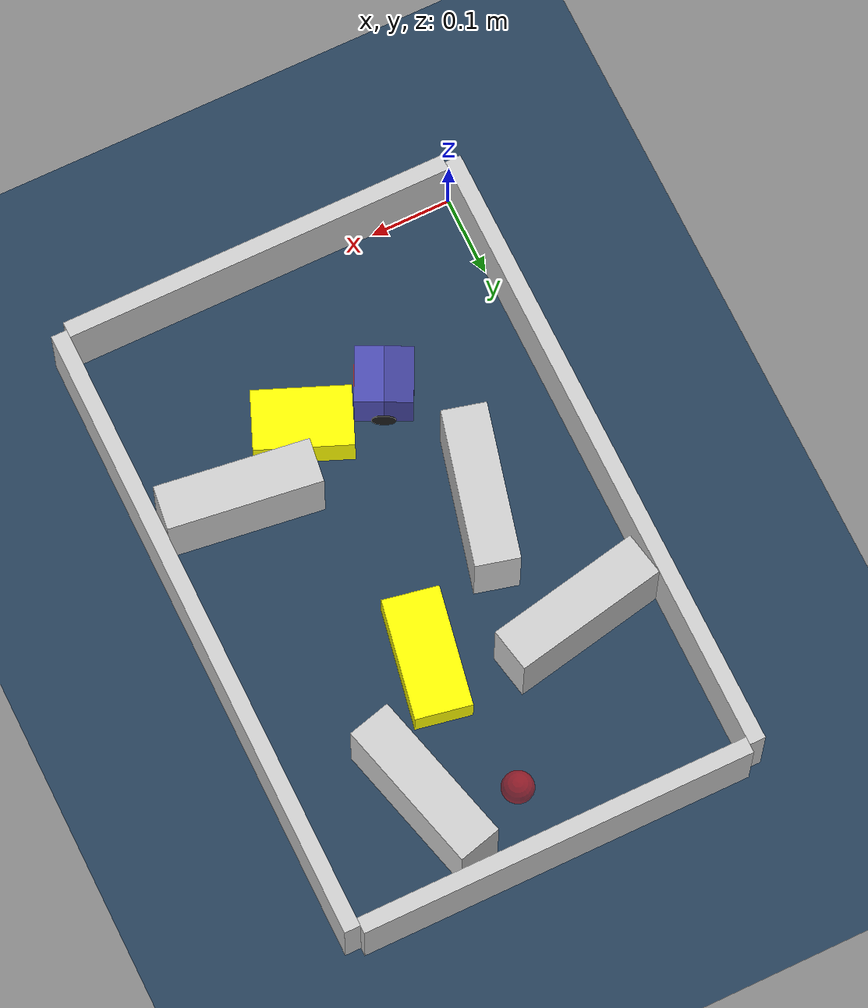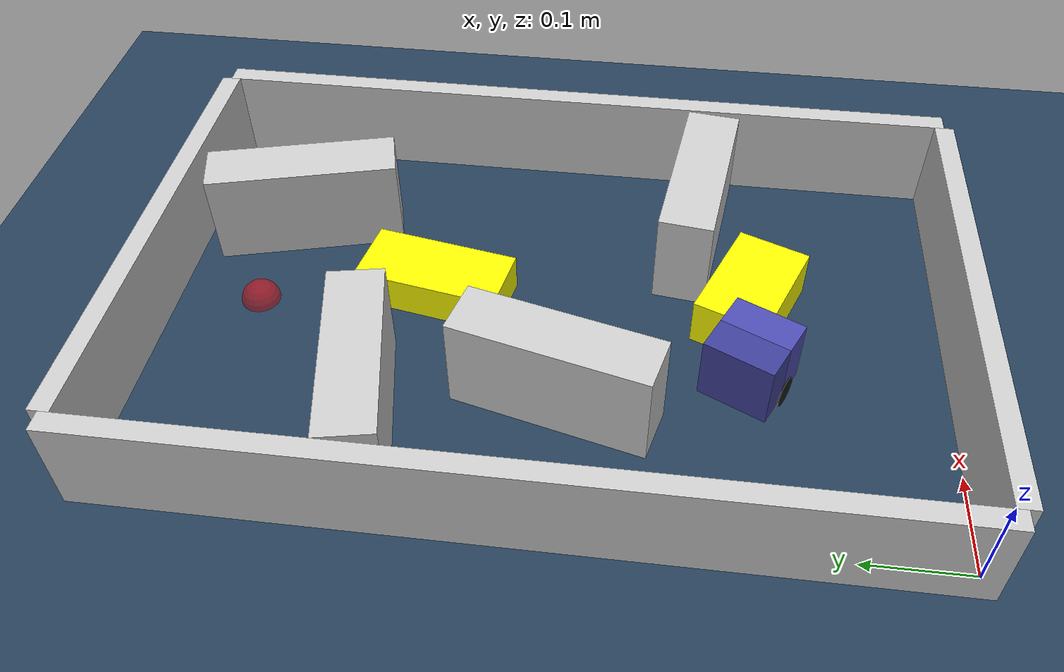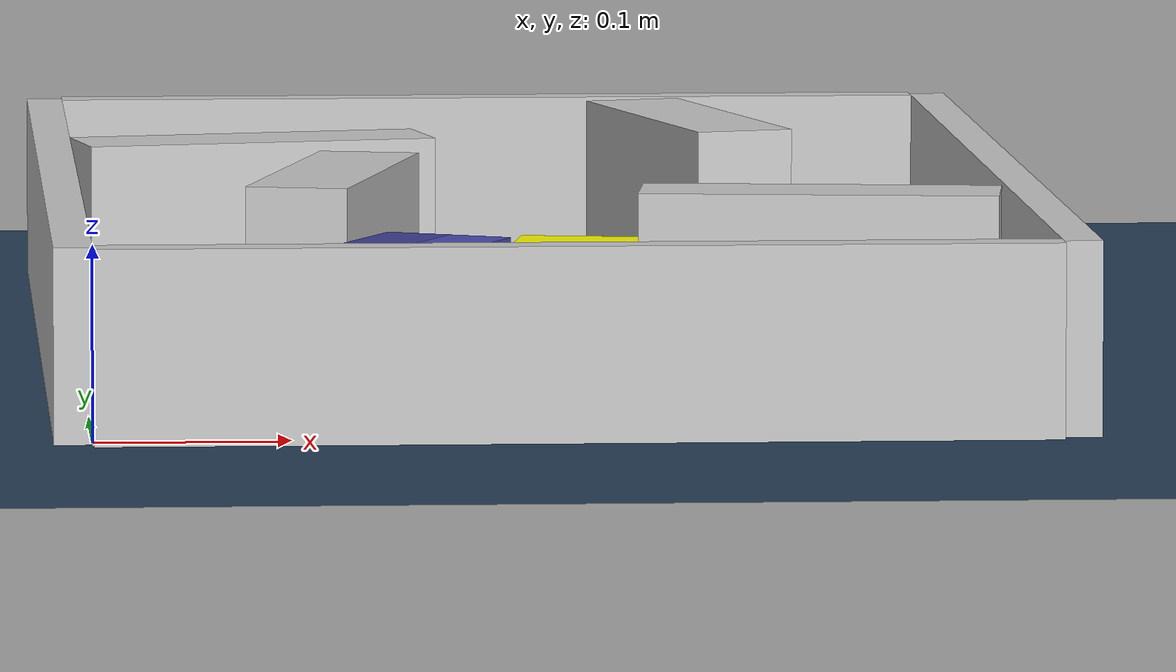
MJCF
<?xml version='1.0' encoding='utf-8'?>
<mujoco model="real_buildable">
  <compiler angle="degree" />
  <option timestep="0.002" integrator="implicitfast" iterations="100" cone="elliptic" />
  <default>
    <geom density="1" />
  </default>
  <asset>
    <texture builtin="gradient" height="3072" rgb1="0.3 0.5 0.7" rgb2="0 0 0" type="skybox" width="512" />
    <texture builtin="checker" height="300" mark="edge" markrgb="0.8 0.8 0.8" name="groundplane" rgb1="0.2 0.3 0.4" rgb2="0.1 0.2 0.3" type="2d" width="300" />
    <material name="groundplane" reflectance="0.2" texrepeat="5 5" texture="groundplane" texuniform="true" />
  </asset>
  <worldbody>
    <light dir="0 0 -1" directional="true" pos="0 0 1.5" />
    <geom name="floor" type="plane" condim="4" friction="0.5 0.005 0.001" material="groundplane" size="0 0 0.05" />
    <body name="walls">
      <geom name="wall_boundary_left" type="box" condim="4" friction="1.0 0.005 0.0001" rgba="0.8 0.8 0.8 1" pos="-0.010000 0.387500 0.050000" euler="0 0 0.000000" size="0.010000 0.397500 0.050000" />
      <geom name="wall_boundary_right" type="box" condim="4" friction="1.0 0.005 0.0001" rgba="0.8 0.8 0.8 1" pos="0.500000 0.387500 0.050000" euler="0 0 0.000000" size="0.010000 0.397500 0.050000" />
      <geom name="wall_boundary_bottom" type="box" condim="4" friction="1.0 0.005 0.0001" rgba="0.8 0.8 0.8 1" pos="0.245000 -0.010000 0.050000" euler="0 0 0.000000" size="0.245000 0.010000 0.050000" />
      <geom name="wall_boundary_top" type="box" condim="4" friction="1.0 0.005 0.0001" rgba="0.8 0.8 0.8 1" pos="0.245000 0.785000 0.050000" euler="0 0 0.000000" size="0.245000 0.010000 0.050000" />
      <geom name="wall_inner_1" type="box" condim="4" friction="1.0 0.005 0.0001" rgba="0.8 0.8 0.8 1" pos="0.390000 0.249000 0.050000" euler="0 0 172.600000" size="0.095000 0.027500 0.050000" />
      <geom name="wall_inner_2" type="box" condim="4" friction="1.0 0.005 0.0001" rgba="0.8 0.8 0.8 1" pos="0.138000 0.370000 0.050000" euler="0 0 75.800000" size="0.097500 0.027500 0.050000" />
      <geom name="wall_inner_3" type="box" condim="4" friction="1.0 0.005 0.0001" rgba="0.8 0.8 0.8 1" pos="0.101000 0.547000 0.050000" euler="0 0 11.200000" size="0.097500 0.027500 0.050000" />
      <geom name="wall_inner_4" type="box" condim="4" friction="1.0 0.005 0.0001" rgba="0.8 0.8 0.8 1" pos="0.352000 0.664000 0.050000" euler="0 0 104.700000" size="0.097500 0.027500 0.050000" />
    </body>
    <body name="car" pos="0.17692917256817056 0.19266337191397104 0.01" quat="0.97418279668324181 0 0 -0.22576066673895484">
      <freejoint name="car_freejoint" />
      <inertial pos="0 0 0.0375" mass="0.35" diaginertia="0.000266 0.000266 0.000286" />
      <geom name="front_chassis_collision" type="box" pos="0.0175 0 0.0375" size="0.0175 0.035 0.0325" rgba="0.3 0.3 0.7 1" />
      <geom name="rear_chassis_collision" type="box" pos="-0.0175 0 0.0375" size="0.0175 0.035 0.0325" rgba="0.25 0.25 0.6 1" />
      <geom name="front_marker" type="box" pos="0.034 0 0.0505" size="0.002 0.015 0.01" rgba="1 0.2 0.2 1" contype="0" conaffinity="0" />
      <body name="rear_support_body" pos="-0.03 0 0.0025">
        <joint name="rear_caster_joint" type="ball" damping="0.0001" />
        <inertial pos="0 0 0" mass="0.025" diaginertia="0.000001 0.000001 0.000001" />
        <geom name="rear_support" type="sphere" pos="0 0 0" size="0.0025" friction="0 0 0" rgba="0.7 0.1 0.1 1" />
      </body>
      <body name="front_support_body" pos="0.03 0 0.0025">
        <joint name="front_caster_joint" type="ball" damping="0.0001" />
        <inertial pos="0 0 0" mass="0.025" diaginertia="0.000001 0.000001 0.000001" />
        <geom name="front_support" type="sphere" pos="0 0 0" size="0.0025" friction="0 0 0" rgba="0.1 0.7 0.1 1" />
      </body>
      <body name="left_wheel" pos="0 0.0375 0.015">
        <inertial pos="0 0 0" mass="0.05" diaginertia="0.000003 0.000006 0.000003" />
        <joint name="left_wheel_joint" type="hinge" axis="0 1 0" damping="0.01" armature="0.0001" />
        <geom name="left_wheel_collision" type="cylinder" size="0.015 0.0005" euler="90 0 0" rgba="0.1 0.1 0.1 1" />
      </body>
      <body name="right_wheel" pos="0 -0.0375 0.015">
        <inertial pos="0 0 0" mass="0.05" diaginertia="0.000003 0.000006 0.000003" />
        <joint name="right_wheel_joint" type="hinge" axis="0 1 0" damping="0.01" armature="0.0001" />
        <geom name="right_wheel_collision" type="cylinder" size="0.015 0.0005" euler="90 0 0" rgba="0.1 0.1 0.1 1" />
      </body>
    </body>
    <body name="obstacle_0_movable">
      <geom name="obstacle_0_movable" condim="4" pos="0.28167806927648797 0.18999367428061659 0.025000000000000001" friction="1 0.005 0.0001" rgba="1 1 0 1" size="0.037500 0.060000 0.025000" type="box" mass="0.1" quat="0.8306663404719129 0 0 0.55677053694228484" />
      <joint type="free" />
    </body>
    <body name="obstacle_1_movable">
      <geom name="obstacle_1_movable" condim="4" pos="0.27400000000000002 0.51000000000000001 0.02" friction="1 0.005 0.0001" rgba="1 1 0 1" size="0.035000 0.075000 0.020000" type="box" mass="0.1" quat="0.99572469818458209 0 0 -0.09237058744656157" />
      <joint type="free" />
    </body>
    <site name="goal" type="sphere" pos="0.245000 0.691000 0.0" size="0.02" rgba="1 0 0 0.5" />
  </worldbody>
  <actuator>
    <velocity name="left_wheel_drive" joint="left_wheel_joint" ctrlrange="-25 25" kv="0.75" forcerange="-0.5 0.5" />
    <velocity name="right_wheel_drive" joint="right_wheel_joint" ctrlrange="-25 25" kv="0.75" forcerange="-0.5 0.5" />
  </actuator>
</mujoco>
